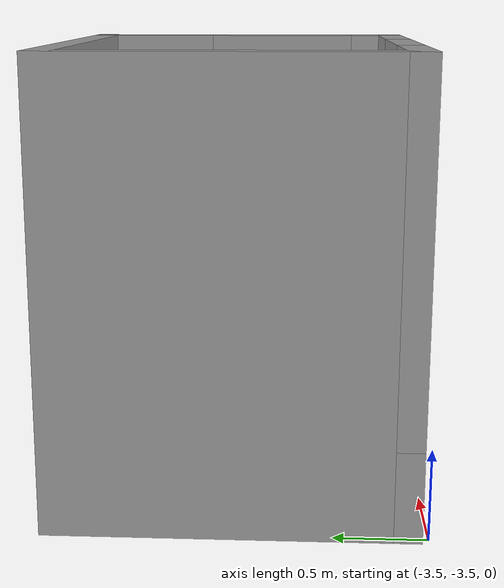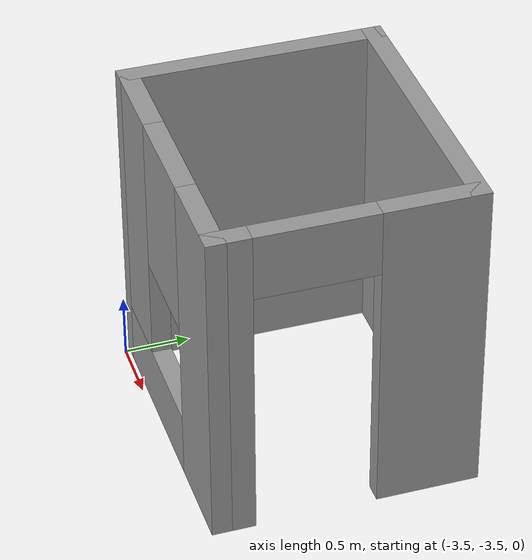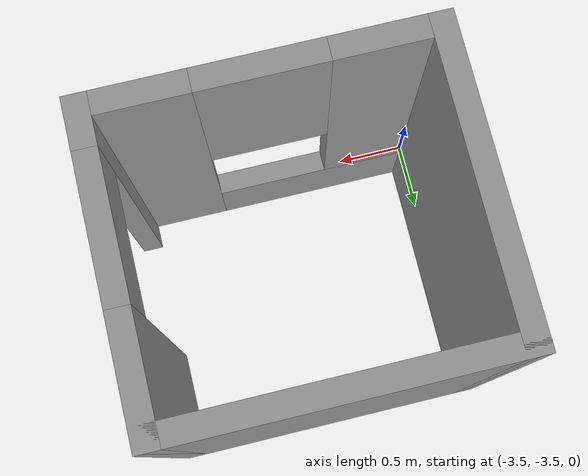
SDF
<?xml version='1.0'?>
<sdf version='1.7'>
  <model name='testbuilding'>
    <pose>-1.7725 -1.7325 0 0 -0 0</pose>
    <link name='Wall_0'>
      <collision name='Wall_0_Collision'>
        <geometry>
          <box>
            <size>2 0.15 2.5</size>
          </box>
        </geometry>
        <pose>0 0 1.25 0 -0 0</pose>
      </collision>
      <visual name='Wall_0_Visual'>
        <pose>0 0 1.25 0 -0 0</pose>
        <geometry>
          <box>
            <size>2 0.15 2.5</size>
          </box>
        </geometry>
        <material>
          <script>
            <uri>file://media/materials/scripts/gazebo.material</uri>
            <name>Gazebo/Grey</name>
          </script>
          <ambient>1 1 1 1</ambient>
        </material>
        <meta>
          <layer>0</layer>
        </meta>
      </visual>
      <pose>-1.6975 -0.7325 0 0 -0 1.5708</pose>
    </link>
    <link name='Wall_1'>
      <collision name='Wall_1_Collision'>
        <geometry>
          <box>
            <size>2.25 0.15 2.5</size>
          </box>
        </geometry>
        <pose>0 0 1.25 0 -0 0</pose>
      </collision>
      <visual name='Wall_1_Visual'>
        <pose>0 0 1.25 0 -0 0</pose>
        <geometry>
          <box>
            <size>2.25 0.15 2.5</size>
          </box>
        </geometry>
        <material>
          <script>
            <uri>file://media/materials/scripts/gazebo.material</uri>
            <name>Gazebo/Grey</name>
          </script>
          <ambient>1 1 1 1</ambient>
        </material>
        <meta>
          <layer>0</layer>
        </meta>
      </visual>
      <pose>-0.6475 0.1925 0 0 -0 0</pose>
    </link>
    <link name='Wall_2'>
      <pose>0.4025 -0.7325 0 0 -0 -1.5708</pose>
      <visual name='Wall_2_Visual_0'>
        <pose>-0.6125 0 1.25 0 -0 0</pose>
        <geometry>
          <box>
            <size>0.775 0.15 2.5</size>
          </box>
        </geometry>
        <material>
          <script>
            <uri>file://media/materials/scripts/gazebo.material</uri>
            <name>Gazebo/Grey</name>
          </script>
          <ambient>1 1 1 1</ambient>
        </material>
        <meta>
          <layer>0</layer>
        </meta>
      </visual>
      <collision name='Wall_2_Collision_0'>
        <geometry>
          <box>
            <size>0.775 0.15 2.5</size>
          </box>
        </geometry>
        <pose>-0.6125 0 1.25 0 -0 0</pose>
      </collision>
      <visual name='Wall_2_Visual_1'>
        <pose>0.8375 0 1.25 0 -0 0</pose>
        <geometry>
          <box>
            <size>0.325 0.15 2.5</size>
          </box>
        </geometry>
        <material>
          <script>
            <uri>file://media/materials/scripts/gazebo.material</uri>
            <name>Gazebo/Grey</name>
          </script>
          <ambient>1 1 1 1</ambient>
        </material>
        <meta>
          <layer>0</layer>
        </meta>
      </visual>
      <collision name='Wall_2_Collision_1'>
        <geometry>
          <box>
            <size>0.325 0.15 2.5</size>
          </box>
        </geometry>
        <pose>0.8375 0 1.25 0 -0 0</pose>
      </collision>
      <visual name='Wall_2_Visual_2'>
        <pose>0.225 0 2.25 0 -0 0</pose>
        <geometry>
          <box>
            <size>0.9 0.15 0.5</size>
          </box>
        </geometry>
        <material>
          <script>
            <uri>file://media/materials/scripts/gazebo.material</uri>
            <name>Gazebo/Grey</name>
          </script>
          <ambient>1 1 1 1</ambient>
        </material>
        <meta>
          <layer>0</layer>
        </meta>
      </visual>
      <collision name='Wall_2_Collision_2'>
        <geometry>
          <box>
            <size>0.9 0.15 0.5</size>
          </box>
        </geometry>
        <pose>0.225 0 2.25 0 -0 0</pose>
      </collision>
    </link>
    <link name='Wall_3'>
      <pose>-0.6475 -1.6575 0 0 -0 3.14159</pose>
      <visual name='Wall_3_Visual_0'>
        <pose>-0.7675 0 1.25 0 -0 0</pose>
        <geometry>
          <box>
            <size>0.715 0.15 2.5</size>
          </box>
        </geometry>
        <material>
          <script>
            <uri>file://media/materials/scripts/gazebo.material</uri>
            <name>Gazebo/Grey</name>
          </script>
          <ambient>1 1 1 1</ambient>
        </material>
        <meta>
          <layer>0</layer>
        </meta>
      </visual>
      <collision name='Wall_3_Collision_0'>
        <geometry>
          <box>
            <size>0.715 0.15 2.5</size>
          </box>
        </geometry>
        <pose>-0.7675 0 1.25 0 -0 0</pose>
      </collision>
      <visual name='Wall_3_Visual_1'>
        <pose>0.3575 0 0.25 0 -0 0</pose>
        <geometry>
          <box>
            <size>1.535 0.15 0.5</size>
          </box>
        </geometry>
        <material>
          <script>
            <uri>file://media/materials/scripts/gazebo.material</uri>
            <name>Gazebo/Grey</name>
          </script>
          <ambient>1 1 1 1</ambient>
        </material>
        <meta>
          <layer>0</layer>
        </meta>
      </visual>
      <collision name='Wall_3_Collision_1'>
        <geometry>
          <box>
            <size>1.535 0.15 0.5</size>
          </box>
        </geometry>
        <pose>0.3575 0 0.25 0 -0 0</pose>
      </collision>
      <visual name='Wall_3_Visual_2'>
        <pose>0.7575 0 1.5 0 -0 0</pose>
        <geometry>
          <box>
            <size>0.735 0.15 2</size>
          </box>
        </geometry>
        <material>
          <script>
            <uri>file://media/materials/scripts/gazebo.material</uri>
            <name>Gazebo/Grey</name>
          </script>
          <ambient>1 1 1 1</ambient>
        </material>
        <meta>
          <layer>0</layer>
        </meta>
      </visual>
      <collision name='Wall_3_Collision_2'>
        <geometry>
          <box>
            <size>0.735 0.15 2</size>
          </box>
        </geometry>
        <pose>0.7575 0 1.5 0 -0 0</pose>
      </collision>
      <visual name='Wall_3_Visual_3'>
        <pose>-0.01 0 1.9 0 -0 0</pose>
        <geometry>
          <box>
            <size>0.8 0.15 1.2</size>
          </box>
        </geometry>
        <material>
          <script>
            <uri>file://media/materials/scripts/gazebo.material</uri>
            <name>Gazebo/Grey</name>
          </script>
          <ambient>1 1 1 1</ambient>
        </material>
        <meta>
          <layer>0</layer>
        </meta>
      </visual>
      <collision name='Wall_3_Collision_3'>
        <geometry>
          <box>
            <size>0.8 0.15 1.2</size>
          </box>
        </geometry>
        <pose>-0.01 0 1.9 0 -0 0</pose>
      </collision>
    </link>
    <static>1</static>
  </model>
</sdf>
